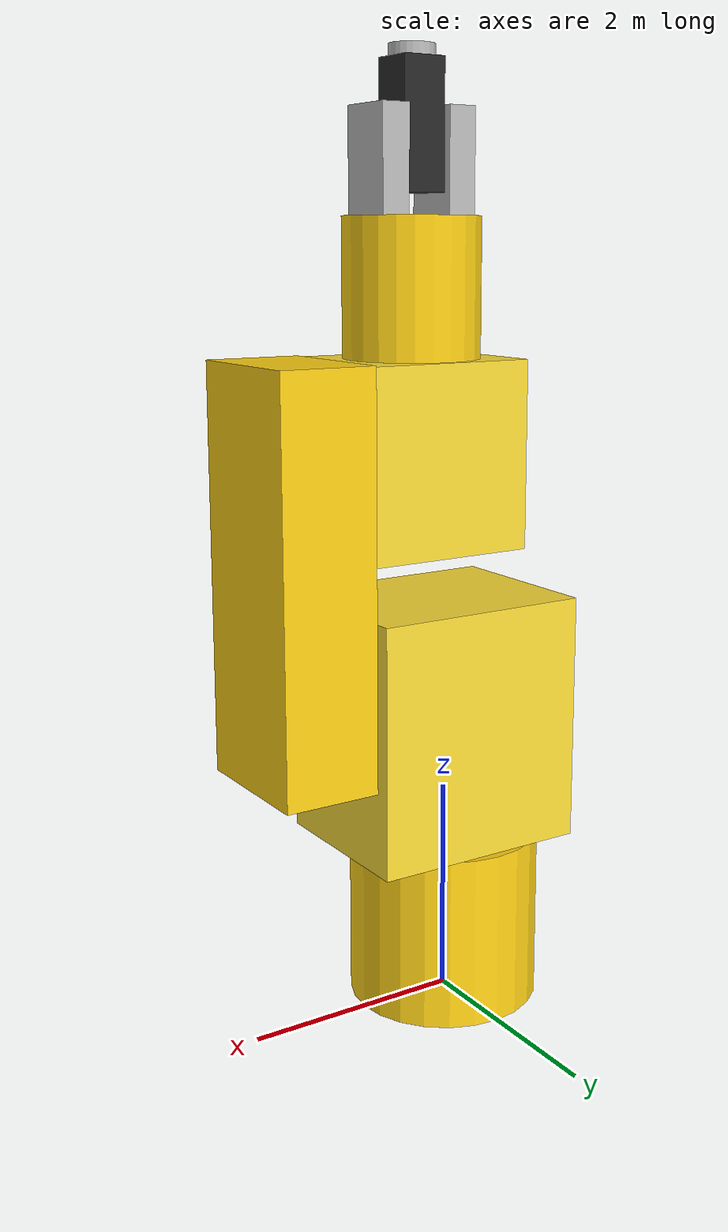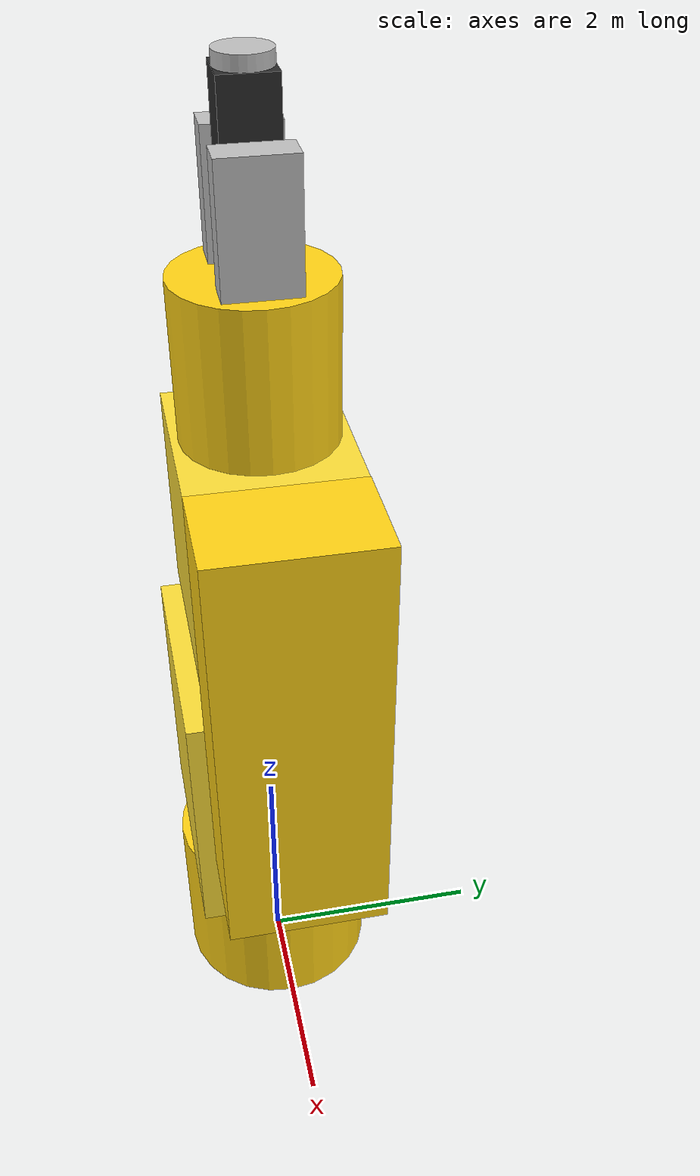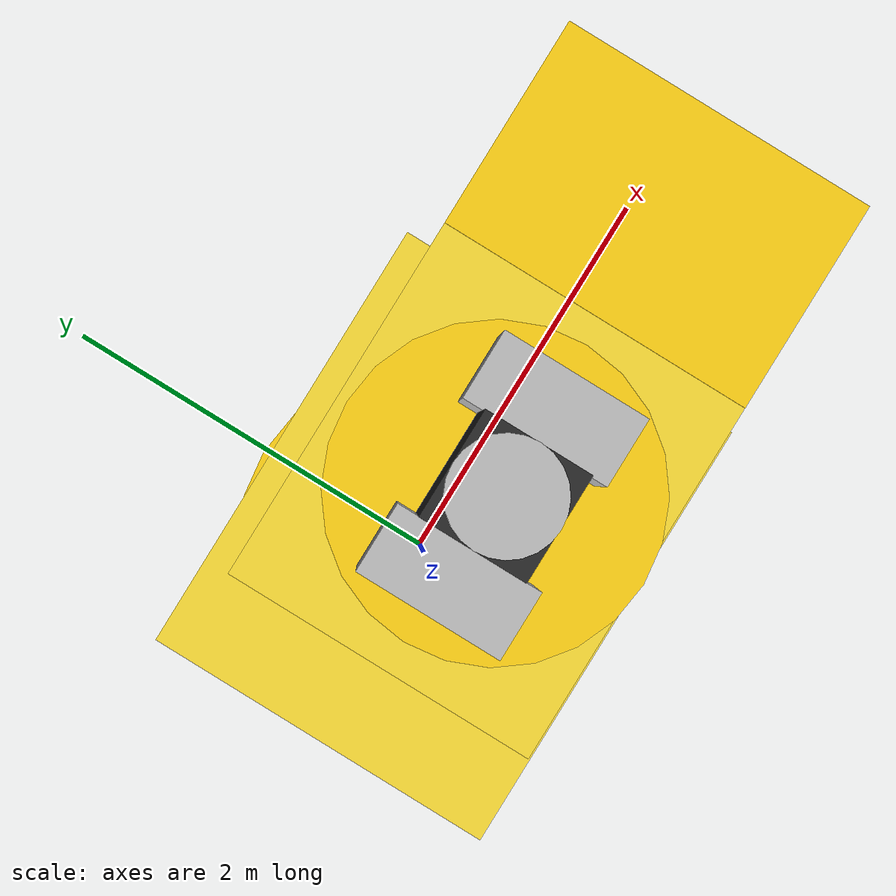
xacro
<?xml version="1.0"?>
<robot xmlns:xacro="http://wiki.ros.org/xacro" name="my_scara">

  <!-- parametry xacro -->
  <xacro:property name="wysokosc_bazy" value="1.6"/>
  <xacro:property name="promien_bazy" value="0.88"/>
  <xacro:property name="masa_bazy" value="10"/>
  <xacro:property name="dlugosc_ramienia_1" value="2.01"/>
  <xacro:property name="dlugosc_ramienia_2" value="0.88"/>
  <xacro:property name="dlugosc_ramienia_3" value="1.53"/>
  <xacro:property name="promien_ramienia_4" value="0.6"/>
  <xacro:property name="dlugosc_ramienia_5" value="0.4"/>
  <xacro:property name="promien_ramienia_6" value="0.2"/>
  <xacro:property name="dlugosc_ramienia_4a" value="0.26"/>
  <xacro:property name="szerokosc_ramienia_1" value="1.6"/>
  <xacro:property name="szerokosc_ramienia_2" value="1.31"/>
  <xacro:property name="szerokosc_ramienia_3" value="1.31"/>
  <xacro:property name="szerokosc_ramienia_4a" value="0.55"/>
  <xacro:property name="szerokosc_ramienia_5" value="0.4"/>
  <xacro:property name="wysokosc_ramienia_1" value="2.25"/>
  <xacro:property name="wysokosc_ramienia_2" value="3.65"/>
  <xacro:property name="wysokosc_ramienia_3" value="1.66"/>
  <xacro:property name="wysokosc_ramienia_4" value="1.2"/>
  <xacro:property name="wysokosc_ramienia_5" value="1.1"/>
  <xacro:property name="wysokosc_ramienia_6" value="0.1"/>
  <xacro:property name="wysokosc_ramienia_4a" value="0.9"/>
  <xacro:property name="masa_ramienia_1" value="10"/>
  <xacro:property name="masa_ramienia_2" value="10"/>
  <xacro:property name="masa_ramienia_3" value="5"/>
  <xacro:property name="masa_ramienia_4" value="3"/>
  <xacro:property name="masa_ramienia_4a" value="1"/>
  <xacro:property name="masa_ramienia_5" value="2"/>
  <xacro:property name="masa_ramienia_6" value="0.5"/>

  <!-- makra xacro -->
  <xacro:macro name="cylinder_inercja" params="m R L">
    <inertia ixx="${0.0833333*m*(3*R*R+L*L)}" ixy="0" ixz="0" iyy="${0.0833333*m*(3*R*R+L*L)}" iyz="0" izz="${0.5*m*R*R}"/>
  </xacro:macro>

  <xacro:macro name="pudelko_inercja" params="m x y z">
    <inertia ixx="${0.0833333*m*(y*y+z*z)}" ixy="0" ixz="0" iyy="${0.0833333*m*(x*x+z*z)}" iyz="0" izz="${0.0833333*m*(y*y+x*x)}"/>
  </xacro:macro>

  <!-- materialy -->
  <material name="gold">
    <color rgba="1 0.823 0.078 1.0"/>
  </material>

  <material name="yellow">
    <color rgba="0.988 0.866 0.211 1.0"/>
  </material>

  <material name="silver">
    <color rgba="0.741 0.741 0.741 1.0"/>
  </material>

  <material name="black">
    <color rgba="0.160 0.160 0.160 1.0"/>
  </material>

  <!-- czlony -->
  <link name="base_link">
    <visual>
      <geometry>
        <cylinder length="${wysokosc_bazy}" radius="${promien_bazy}"/>
      </geometry>
      <origin rpy="0 0 0" xyz="0 0 ${wysokosc_bazy/2}"/>
      <material name="gold"/>
    </visual>
    <collision>
      <geometry>
        <cylinder length="${wysokosc_bazy}" radius="${promien_bazy}"/>
      </geometry>
      <origin rpy="0 0 0" xyz="0 0 ${wysokosc_bazy/2}"/>
    </collision>
    <inertial>
      <origin rpy="0 0 0" xyz="0 0 ${wysokosc_bazy/2}"/>
      <mass value="${masa_bazy}"/>
      <xacro:cylinder_inercja m="${masa_bazy}" R="${promien_bazy}" L="${wysokosc_bazy}"/>
    </inertial>
  </link>

  <link name="arm1_link">
    <visual>
      <geometry>
        <box size="${dlugosc_ramienia_1} ${szerokosc_ramienia_1} ${wysokosc_ramienia_1}"/>
      </geometry>
      <origin rpy="0 0 0" xyz="${(dlugosc_ramienia_1/2)-(promien_bazy)} 0 ${wysokosc_ramienia_1/2}"/>
      <material name="yellow"/>
    </visual>
    <collision>
      <geometry>
        <box size="${dlugosc_ramienia_1} ${szerokosc_ramienia_1} ${wysokosc_ramienia_1}"/>
      </geometry>
      <origin rpy="0 0 0" xyz="${dlugosc_ramienia_1/2} 0 ${wysokosc_ramienia_1/2}"/>
    </collision>
    <inertial>
      <origin rpy="0 0 0" xyz="${dlugosc_ramienia_1/2} 0 ${wysokosc_ramienia_1/2}"/>
      <mass value="${masa_ramienia_1}"/>
      <xacro:pudelko_inercja m="${masa_ramienia_1}" x="${dlugosc_ramienia_1}" y="${szerokosc_ramienia_1}" z="${wysokosc_ramienia_1}"/>
    </inertial>
  </link>

  <link name="arm2_link">
    <visual>
      <geometry>
        <box size="${dlugosc_ramienia_2} ${szerokosc_ramienia_2} ${wysokosc_ramienia_2}"/>
      </geometry>
      <origin rpy="0 0 0" xyz="${dlugosc_ramienia_2/2} 0 ${(wysokosc_ramienia_2/2)-(wysokosc_ramienia_1/3)}"/>
      <material name="gold"/>
    </visual>
    <collision>
      <geometry>
        <box size="${dlugosc_ramienia_2} ${szerokosc_ramienia_2} ${wysokosc_ramienia_2}"/>
      </geometry>
      <origin rpy="0 0 0" xyz="${dlugosc_ramienia_2/2} 0 ${wysokosc_ramienia_2/2}"/>
    </collision>
    <inertial>
      <origin rpy="0 0 0" xyz="${dlugosc_ramienia_2/2} 0 ${wysokosc_ramienia_2/2}"/>
      <mass value="${masa_ramienia_2}"/>
      <xacro:pudelko_inercja m="${masa_ramienia_2}" x="${dlugosc_ramienia_2}" y="${szerokosc_ramienia_2}" z="${wysokosc_ramienia_2}"/>
    </inertial>
  </link>

  <link name="arm3_link">
    <visual>
      <geometry>
        <box size="${dlugosc_ramienia_3} ${szerokosc_ramienia_3} ${wysokosc_ramienia_3}"/>
      </geometry>
      <origin rpy="0 0 0" xyz="${-dlugosc_ramienia_3/2} 0 ${(wysokosc_ramienia_3/2)-1.02}"/>
      <material name="yellow"/>
    </visual>
    <collision>
      <geometry>
        <box size="${dlugosc_ramienia_3} ${szerokosc_ramienia_3} ${wysokosc_ramienia_3}"/>
      </geometry>
      <origin rpy="0 0 0" xyz="${dlugosc_ramienia_3/2} 0 ${wysokosc_ramienia_3/2}"/>
    </collision>
    <inertial>
      <origin rpy="0 0 0" xyz="${dlugosc_ramienia_3/2} 0 ${wysokosc_ramienia_3/2}"/>
      <mass value="${masa_ramienia_3}"/>
      <xacro:pudelko_inercja m="${masa_ramienia_3}" x="${dlugosc_ramienia_3}" y="${szerokosc_ramienia_3}" z="${wysokosc_ramienia_3}"/>
    </inertial>
  </link>

  <link name="arm4_link">
    <visual>
      <geometry>
        <cylinder length="${wysokosc_ramienia_4}" radius="${promien_ramienia_4}"/>
      </geometry>
      <origin rpy="0 0 0" xyz="0 0 ${wysokosc_ramienia_4/2+((wysokosc_ramienia_3/2)-1.02)}"/>
      <material name="gold"/>
    </visual>
    <collision>
      <geometry>
        <cylinder length="${wysokosc_ramienia_4}" radius="${promien_ramienia_4}"/>
      </geometry>
      <origin rpy="0 0 0" xyz="0 0 ${wysokosc_ramienia_4/2+((wysokosc_ramienia_3/2)-1.02)}"/>
    </collision>
    <inertial>
      <origin rpy="0 0 0" xyz="0 0 ${wysokosc_ramienia_4/2+((wysokosc_ramienia_3/2)-1.02)}"/>
      <mass value="${masa_ramienia_4}"/>
      <xacro:cylinder_inercja m="${masa_ramienia_4}" R="${promien_ramienia_4}" L="${wysokosc_ramienia_4}"/>
    </inertial>
  </link>

  <link name="arm4a_link">
    <visual>
      <geometry>
        <box size="${dlugosc_ramienia_4a} ${szerokosc_ramienia_4a} ${wysokosc_ramienia_4a}"/>
      </geometry>
      <origin rpy="0 0 0" xyz="0 0 ${wysokosc_ramienia_4a/2+((wysokosc_ramienia_3/2)-1.02)}"/>
      <material name="silver"/>
    </visual>
    <collision>
      <geometry>
        <box size="${dlugosc_ramienia_4a} ${szerokosc_ramienia_4a} ${wysokosc_ramienia_4a}"/>
      </geometry>
      <origin rpy="0 0 0" xyz="${dlugosc_ramienia_4a/2} 0 ${wysokosc_ramienia_4a/2+((wysokosc_ramienia_3/2)-1.02)}"/>
    </collision>
    <inertial>
      <origin rpy="0 0 0" xyz="${dlugosc_ramienia_4a/2} 0 ${wysokosc_ramienia_4a/2+((wysokosc_ramienia_3/2)-1.02)}"/>
      <mass value="${masa_ramienia_4a}"/>
      <xacro:pudelko_inercja m="${masa_ramienia_4a}" x="${dlugosc_ramienia_4a}" y="${szerokosc_ramienia_4a}" z="${wysokosc_ramienia_4a}"/>
    </inertial>
  </link>

  <link name="arm4b_link">
    <visual>
      <geometry>
        <box size="${dlugosc_ramienia_4a} ${szerokosc_ramienia_4a} ${wysokosc_ramienia_4a}"/>
      </geometry>
      <origin rpy="0 0 0" xyz="0 0 ${wysokosc_ramienia_4a/2+((wysokosc_ramienia_3/2)-1.02)}"/>
      <material name="silver"/>
    </visual>
    <collision>
      <geometry>
        <box size="${dlugosc_ramienia_4a} ${szerokosc_ramienia_4a} ${wysokosc_ramienia_4a}"/>
      </geometry>
      <origin rpy="0 0 0" xyz="${dlugosc_ramienia_4a/2} 0 ${wysokosc_ramienia_4a/2+((wysokosc_ramienia_3/2)-1.02)}"/>
    </collision>
    <inertial>
      <origin rpy="0 0 0" xyz="${dlugosc_ramienia_4a/2} 0 ${wysokosc_ramienia_4a/2+((wysokosc_ramienia_3/2)-1.02)}"/>
      <mass value="${masa_ramienia_4a}"/>
      <xacro:pudelko_inercja m="${masa_ramienia_4a}" x="${dlugosc_ramienia_4a}" y="${szerokosc_ramienia_4a}" z="${wysokosc_ramienia_4a}"/>
    </inertial>
  </link>

  <link name="arm5_link">
    <visual>
      <geometry>
        <box size="${dlugosc_ramienia_5} ${szerokosc_ramienia_5} ${wysokosc_ramienia_5}"/>
      </geometry>
      <origin rpy="0 0 0" xyz="${dlugosc_ramienia_5/2} 0 ${(wysokosc_ramienia_5/2)-(wysokosc_ramienia_4a/2)}"/>
      <material name="black"/>
    </visual>
    <collision>
      <geometry>
        <box size="${dlugosc_ramienia_5} ${szerokosc_ramienia_5} ${wysokosc_ramienia_5}"/>
      </geometry>
      <origin rpy="0 0 0" xyz="${dlugosc_ramienia_5/2} 0 ${(wysokosc_ramienia_5/2)-(wysokosc_ramienia_4a/2)}"/>
    </collision>
    <inertial>
      <origin rpy="0 0 0" xyz="${dlugosc_ramienia_5/2} 0 ${(wysokosc_ramienia_5/2)-(wysokosc_ramienia_4a/2)}"/>
      <mass value="${masa_ramienia_5}"/>
      <xacro:pudelko_inercja m="${masa_ramienia_5}" x="${dlugosc_ramienia_5}" y="${szerokosc_ramienia_5}" z="${wysokosc_ramienia_5}"/>
    </inertial>
  </link>

  <link name="arm6_link">
    <visual>
      <geometry>
        <cylinder length="${wysokosc_ramienia_6}" radius="${promien_ramienia_6}"/>
      </geometry>
      <origin rpy="0 0 0" xyz="0 0 ${wysokosc_ramienia_6/2}"/>
      <material name="silver"/>
    </visual>
    <collision>
      <geometry>
        <cylinder length="${wysokosc_ramienia_6}" radius="${promien_ramienia_6}"/>
      </geometry>
      <origin rpy="0 0 0" xyz="0 0 ${wysokosc_ramienia_6/2}"/>
    </collision>
    <inertial>
      <origin rpy="0 0 0" xyz="0 0 ${wysokosc_ramienia_6/2}"/>
      <mass value="${masa_ramienia_6}"/>
      <xacro:cylinder_inercja m="${masa_ramienia_6}" R="${promien_ramienia_6}" L="${wysokosc_ramienia_6}"/>
    </inertial>
  </link>

  <!-- zlacza -->
  <joint name="joint1" type="revolute">
    <parent link="base_link"/>
    <child link="arm1_link"/>
    <axis xyz="0 0 1"/>
    <origin rpy="0 0 0" xyz="0 0 ${wysokosc_bazy}"/>
    <limit effort="1000.0" lower="-3.14" upper="3.14" velocity="1.0"/>
  </joint>

  <joint name="joint2" type="revolute">
    <parent link="arm1_link"/>
    <child link="arm2_link"/>
    <axis xyz="1 0 0"/>
    <origin rpy="0 0 0" xyz="${dlugosc_ramienia_1-promien_bazy} 0 ${(wysokosc_ramienia_1/2)+(wysokosc_ramienia_1/6)}"/>
    <limit effort="1000.0" lower="-2.18" upper="2.18" velocity="1.0"/>
  </joint>

  <joint name="joint3" type="revolute">
    <parent link="arm2_link"/>
    <child link="arm3_link"/>
    <axis xyz="1 0 0"/>
    <origin rpy="0 0 0" xyz="0 0 2.25"/>
    <limit effort="1000.0" lower="-2.41" upper="2.41" velocity="1.0"/>
  </joint>

  <joint name="joint4" type="revolute">
    <parent link="arm3_link"/>
    <child link="arm4_link"/>
    <axis xyz="0 0 1"/>
    <origin rpy="0 0 0" xyz="${-dlugosc_ramienia_3/2} 0 ${wysokosc_ramienia_3/2}"/>
    <limit effort="1000.0" lower="-3.32" upper="3.32" velocity="1.0"/>
  </joint>

  <joint name="joint4a" type="fixed">
    <parent link="arm4_link"/>
    <child link="arm4a_link"/>
    <origin rpy="0 0 0" xyz="-0.33 0 ${wysokosc_ramienia_4}"/>
  </joint>

  <joint name="joint4b" type="fixed">
    <parent link="arm4_link"/>
    <child link="arm4b_link"/>
    <origin rpy="0 0 0" xyz="0.33 0 ${wysokosc_ramienia_4}"/>
  </joint>

  <joint name="joint5" type="revolute">
    <parent link="arm4a_link"/>
    <child link="arm5_link"/>
    <axis xyz="1 0 0"/>
    <origin rpy="0 0 0" xyz="${dlugosc_ramienia_4a/2} 0 ${wysokosc_ramienia_4a/2}"/>
    <limit effort="1000.0" lower="-2.09" upper="2.33" velocity="1.0"/>
  </joint>

  <joint name="joint6" type="revolute">
    <parent link="arm5_link"/>
    <child link="arm6_link"/>
    <axis xyz="0 0 1"/>
    <origin rpy="0 0 0" xyz="${dlugosc_ramienia_5/2} 0 ${wysokosc_ramienia_5-wysokosc_ramienia_4a/2}"/>
    <limit effort="1000.0" lower="-4.71" upper="4.71" velocity="1.0"/>
  </joint>

</robot>
